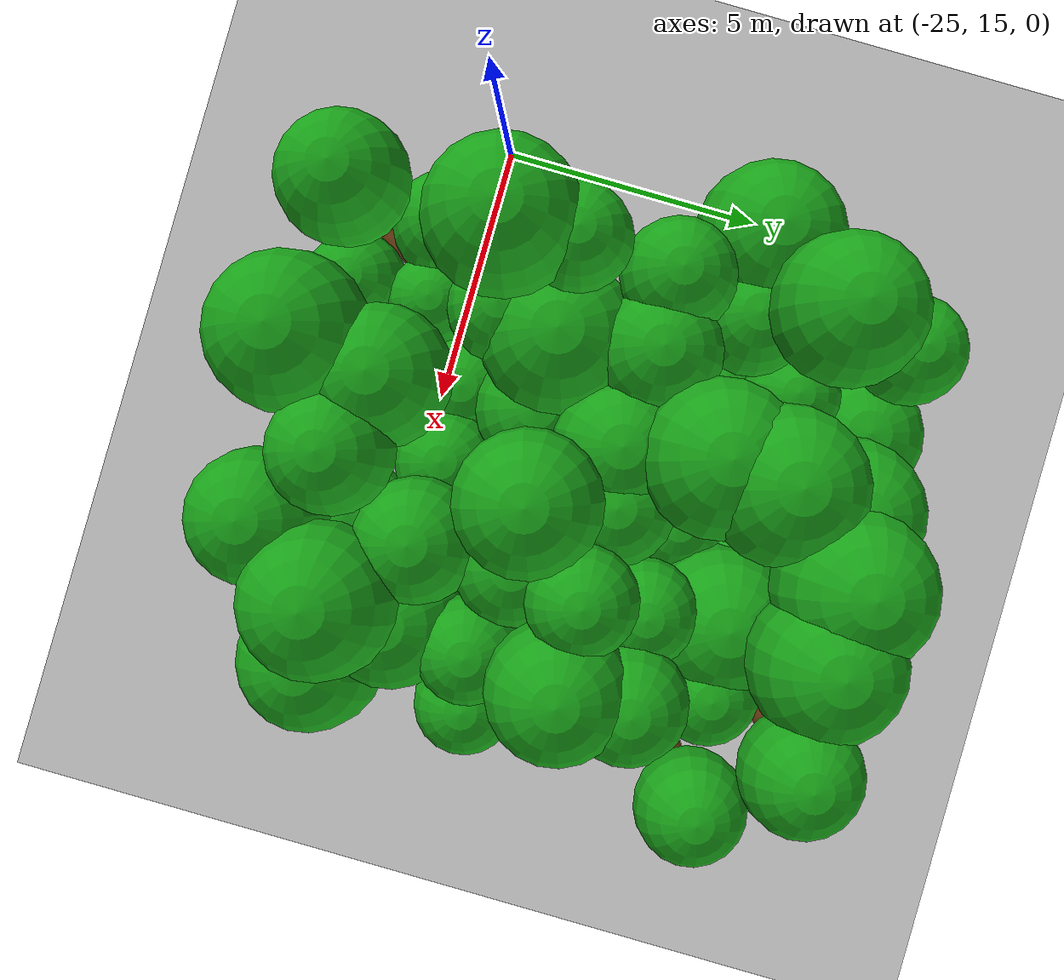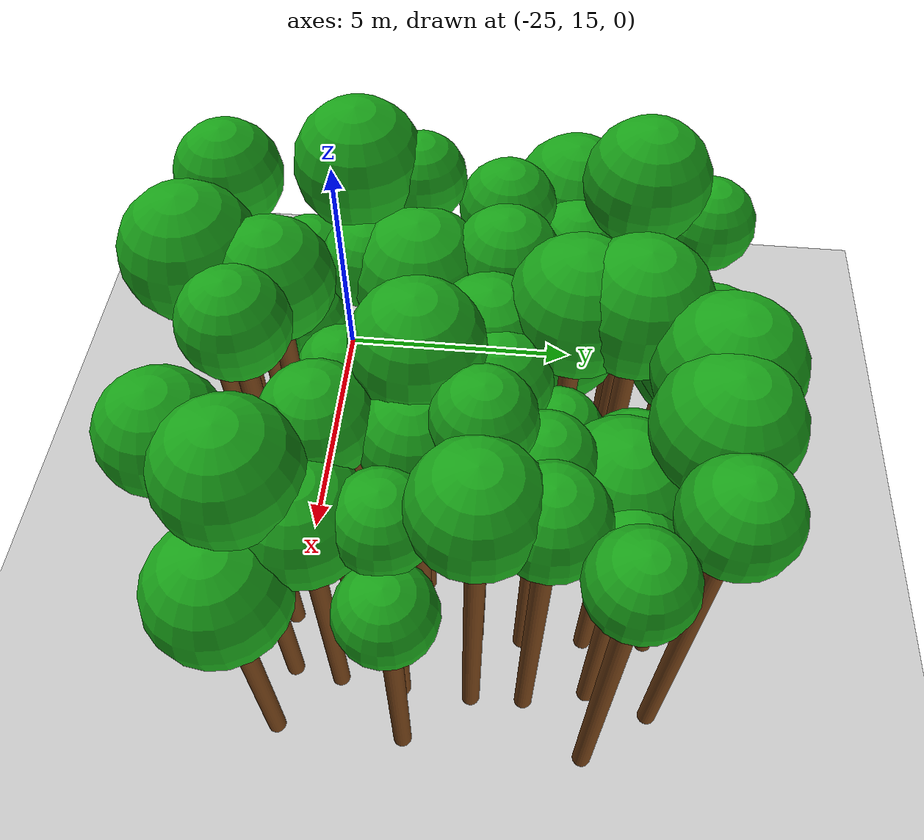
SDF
<sdf version="1.6">
 <world name="forest_world">
  <include><uri>model://sun</uri></include>
  <include><uri>model://ground_plane</uri></include>
  <model name="tree_375_trunk">
   <static>true</static>
   <pose>-23.26 19.58 2.82 0 0 0</pose>
   <link name="link">
    <collision name="collision">
     <geometry><cylinder><radius>0.16</radius><length>5.64</length></cylinder></geometry>
    </collision>
    <visual name="visual">
     <geometry><cylinder><radius>0.16</radius><length>5.64</length></cylinder></geometry>
     <material><ambient>0.35 0.20 0.05 1</ambient><diffuse>0.45 0.25 0.08 1</diffuse></material>
    </visual>
   </link>
  </model>
  <model name="tree_375_leaf">
   <static>true</static>
   <pose>-23.26 19.58 6.26 0 0 0</pose>
   <link name="link">
    <collision name="collision"><geometry><sphere><radius>1.03</radius></sphere></geometry></collision>
    <visual name="visual">
     <geometry><sphere><radius>1.03</radius></sphere></geometry>
     <material><ambient>0.05 0.45 0.05 1</ambient><diffuse>0.10 0.65 0.10 1</diffuse></material>
    </visual>
   </link>
  </model>
  <model name="tree_425_trunk">
   <static>true</static>
   <pose>-22.26 14.05 3.31 0 0 0</pose>
   <link name="link">
    <collision name="collision">
     <geometry><cylinder><radius>0.16</radius><length>6.62</length></cylinder></geometry>
    </collision>
    <visual name="visual">
     <geometry><cylinder><radius>0.16</radius><length>6.62</length></cylinder></geometry>
     <material><ambient>0.35 0.20 0.05 1</ambient><diffuse>0.45 0.25 0.08 1</diffuse></material>
    </visual>
   </link>
  </model>
  <model name="tree_425_leaf">
   <static>true</static>
   <pose>-22.26 14.05 7.14 0 0 0</pose>
   <link name="link">
    <collision name="collision"><geometry><sphere><radius>0.87</radius></sphere></geometry></collision>
    <visual name="visual">
     <geometry><sphere><radius>0.87</radius></sphere></geometry>
     <material><ambient>0.05 0.45 0.05 1</ambient><diffuse>0.10 0.65 0.10 1</diffuse></material>
    </visual>
   </link>
  </model>
  <model name="tree_426_trunk">
   <static>true</static>
   <pose>-22.38 15.13 2.36 0 0 0</pose>
   <link name="link">
    <collision name="collision">
     <geometry><cylinder><radius>0.16</radius><length>4.73</length></cylinder></geometry>
    </collision>
    <visual name="visual">
     <geometry><cylinder><radius>0.16</radius><length>4.73</length></cylinder></geometry>
     <material><ambient>0.35 0.20 0.05 1</ambient><diffuse>0.45 0.25 0.08 1</diffuse></material>
    </visual>
   </link>
  </model>
  <model name="tree_426_leaf">
   <static>true</static>
   <pose>-22.38 15.13 5.21 0 0 0</pose>
   <link name="link">
    <collision name="collision"><geometry><sphere><radius>0.80</radius></sphere></geometry></collision>
    <visual name="visual">
     <geometry><sphere><radius>0.80</radius></sphere></geometry>
     <material><ambient>0.05 0.45 0.05 1</ambient><diffuse>0.10 0.65 0.10 1</diffuse></material>
    </visual>
   </link>
  </model>
  <model name="tree_427_trunk">
   <static>true</static>
   <pose>-22.29 16.17 3.43 0 0 0</pose>
   <link name="link">
    <collision name="collision">
     <geometry><cylinder><radius>0.16</radius><length>6.86</length></cylinder></geometry>
    </collision>
    <visual name="visual">
     <geometry><cylinder><radius>0.16</radius><length>6.86</length></cylinder></geometry>
     <material><ambient>0.35 0.20 0.05 1</ambient><diffuse>0.45 0.25 0.08 1</diffuse></material>
    </visual>
   </link>
  </model>
  <model name="tree_427_leaf">
   <static>true</static>
   <pose>-22.29 16.17 7.48 0 0 0</pose>
   <link name="link">
    <collision name="collision"><geometry><sphere><radius>1.03</radius></sphere></geometry></collision>
    <visual name="visual">
     <geometry><sphere><radius>1.03</radius></sphere></geometry>
     <material><ambient>0.05 0.45 0.05 1</ambient><diffuse>0.10 0.65 0.10 1</diffuse></material>
    </visual>
   </link>
  </model>
  <model name="tree_428_trunk">
   <static>true</static>
   <pose>-22.34 17.13 3.41 0 0 0</pose>
   <link name="link">
    <collision name="collision">
     <geometry><cylinder><radius>0.16</radius><length>6.82</length></cylinder></geometry>
    </collision>
    <visual name="visual">
     <geometry><cylinder><radius>0.16</radius><length>6.82</length></cylinder></geometry>
     <material><ambient>0.35 0.20 0.05 1</ambient><diffuse>0.45 0.25 0.08 1</diffuse></material>
    </visual>
   </link>
  </model>
  <model name="tree_428_leaf">
   <static>true</static>
   <pose>-22.34 17.13 7.25 0 0 0</pose>
   <link name="link">
    <collision name="collision"><geometry><sphere><radius>0.71</radius></sphere></geometry></collision>
    <visual name="visual">
     <geometry><sphere><radius>0.71</radius></sphere></geometry>
     <material><ambient>0.05 0.45 0.05 1</ambient><diffuse>0.10 0.65 0.10 1</diffuse></material>
    </visual>
   </link>
  </model>
  <model name="tree_429_trunk">
   <static>true</static>
   <pose>-22.31 18.50 3.15 0 0 0</pose>
   <link name="link">
    <collision name="collision">
     <geometry><cylinder><radius>0.16</radius><length>6.30</length></cylinder></geometry>
    </collision>
    <visual name="visual">
     <geometry><cylinder><radius>0.16</radius><length>6.30</length></cylinder></geometry>
     <material><ambient>0.35 0.20 0.05 1</ambient><diffuse>0.45 0.25 0.08 1</diffuse></material>
    </visual>
   </link>
  </model>
  <model name="tree_429_leaf">
   <static>true</static>
   <pose>-22.31 18.50 6.77 0 0 0</pose>
   <link name="link">
    <collision name="collision"><geometry><sphere><radius>0.78</radius></sphere></geometry></collision>
    <visual name="visual">
     <geometry><sphere><radius>0.78</radius></sphere></geometry>
     <material><ambient>0.05 0.45 0.05 1</ambient><diffuse>0.10 0.65 0.10 1</diffuse></material>
    </visual>
   </link>
  </model>
  <model name="tree_430_trunk">
   <static>true</static>
   <pose>-22.13 19.65 2.85 0 0 0</pose>
   <link name="link">
    <collision name="collision">
     <geometry><cylinder><radius>0.16</radius><length>5.71</length></cylinder></geometry>
    </collision>
    <visual name="visual">
     <geometry><cylinder><radius>0.16</radius><length>5.71</length></cylinder></geometry>
     <material><ambient>0.35 0.20 0.05 1</ambient><diffuse>0.45 0.25 0.08 1</diffuse></material>
    </visual>
   </link>
  </model>
  <model name="tree_430_leaf">
   <static>true</static>
   <pose>-22.13 19.65 6.18 0 0 0</pose>
   <link name="link">
    <collision name="collision"><geometry><sphere><radius>0.79</radius></sphere></geometry></collision>
    <visual name="visual">
     <geometry><sphere><radius>0.79</radius></sphere></geometry>
     <material><ambient>0.05 0.45 0.05 1</ambient><diffuse>0.10 0.65 0.10 1</diffuse></material>
    </visual>
   </link>
  </model>
  <model name="tree_431_trunk">
   <static>true</static>
   <pose>-22.37 20.61 3.41 0 0 0</pose>
   <link name="link">
    <collision name="collision">
     <geometry><cylinder><radius>0.16</radius><length>6.81</length></cylinder></geometry>
    </collision>
    <visual name="visual">
     <geometry><cylinder><radius>0.16</radius><length>6.81</length></cylinder></geometry>
     <material><ambient>0.35 0.20 0.05 1</ambient><diffuse>0.45 0.25 0.08 1</diffuse></material>
    </visual>
   </link>
  </model>
  <model name="tree_431_leaf">
   <static>true</static>
   <pose>-22.37 20.61 7.41 0 0 0</pose>
   <link name="link">
    <collision name="collision"><geometry><sphere><radius>0.99</radius></sphere></geometry></collision>
    <visual name="visual">
     <geometry><sphere><radius>0.99</radius></sphere></geometry>
     <material><ambient>0.05 0.45 0.05 1</ambient><diffuse>0.10 0.65 0.10 1</diffuse></material>
    </visual>
   </link>
  </model>
  <model name="tree_432_trunk">
   <static>true</static>
   <pose>-22.21 21.65 3.17 0 0 0</pose>
   <link name="link">
    <collision name="collision">
     <geometry><cylinder><radius>0.16</radius><length>6.34</length></cylinder></geometry>
    </collision>
    <visual name="visual">
     <geometry><cylinder><radius>0.16</radius><length>6.34</length></cylinder></geometry>
     <material><ambient>0.35 0.20 0.05 1</ambient><diffuse>0.45 0.25 0.08 1</diffuse></material>
    </visual>
   </link>
  </model>
  <model name="tree_432_leaf">
   <static>true</static>
   <pose>-22.21 21.65 6.78 0 0 0</pose>
   <link name="link">
    <collision name="collision"><geometry><sphere><radius>0.74</radius></sphere></geometry></collision>
    <visual name="visual">
     <geometry><sphere><radius>0.74</radius></sphere></geometry>
     <material><ambient>0.05 0.45 0.05 1</ambient><diffuse>0.10 0.65 0.10 1</diffuse></material>
    </visual>
   </link>
  </model>
  <model name="tree_480_trunk">
   <static>true</static>
   <pose>-21.26 14.01 2.22 0 0 0</pose>
   <link name="link">
    <collision name="collision">
     <geometry><cylinder><radius>0.16</radius><length>4.45</length></cylinder></geometry>
    </collision>
    <visual name="visual">
     <geometry><cylinder><radius>0.16</radius><length>4.45</length></cylinder></geometry>
     <material><ambient>0.35 0.20 0.05 1</ambient><diffuse>0.45 0.25 0.08 1</diffuse></material>
    </visual>
   </link>
  </model>
  <model name="tree_480_leaf">
   <static>true</static>
   <pose>-21.26 14.01 4.90 0 0 0</pose>
   <link name="link">
    <collision name="collision"><geometry><sphere><radius>0.75</radius></sphere></geometry></collision>
    <visual name="visual">
     <geometry><sphere><radius>0.75</radius></sphere></geometry>
     <material><ambient>0.05 0.45 0.05 1</ambient><diffuse>0.10 0.65 0.10 1</diffuse></material>
    </visual>
   </link>
  </model>
  <model name="tree_481_trunk">
   <static>true</static>
   <pose>-21.28 15.23 2.29 0 0 0</pose>
   <link name="link">
    <collision name="collision">
     <geometry><cylinder><radius>0.16</radius><length>4.59</length></cylinder></geometry>
    </collision>
    <visual name="visual">
     <geometry><cylinder><radius>0.16</radius><length>4.59</length></cylinder></geometry>
     <material><ambient>0.35 0.20 0.05 1</ambient><diffuse>0.45 0.25 0.08 1</diffuse></material>
    </visual>
   </link>
  </model>
  <model name="tree_481_leaf">
   <static>true</static>
   <pose>-21.28 15.23 5.01 0 0 0</pose>
   <link name="link">
    <collision name="collision"><geometry><sphere><radius>0.70</radius></sphere></geometry></collision>
    <visual name="visual">
     <geometry><sphere><radius>0.70</radius></sphere></geometry>
     <material><ambient>0.05 0.45 0.05 1</ambient><diffuse>0.10 0.65 0.10 1</diffuse></material>
    </visual>
   </link>
  </model>
  <model name="tree_482_trunk">
   <static>true</static>
   <pose>-21.32 16.36 2.96 0 0 0</pose>
   <link name="link">
    <collision name="collision">
     <geometry><cylinder><radius>0.16</radius><length>5.92</length></cylinder></geometry>
    </collision>
    <visual name="visual">
     <geometry><cylinder><radius>0.16</radius><length>5.92</length></cylinder></geometry>
     <material><ambient>0.35 0.20 0.05 1</ambient><diffuse>0.45 0.25 0.08 1</diffuse></material>
    </visual>
   </link>
  </model>
  <model name="tree_482_leaf">
   <static>true</static>
   <pose>-21.32 16.36 6.37 0 0 0</pose>
   <link name="link">
    <collision name="collision"><geometry><sphere><radius>0.75</radius></sphere></geometry></collision>
    <visual name="visual">
     <geometry><sphere><radius>0.75</radius></sphere></geometry>
     <material><ambient>0.05 0.45 0.05 1</ambient><diffuse>0.10 0.65 0.10 1</diffuse></material>
    </visual>
   </link>
  </model>
  <model name="tree_483_trunk">
   <static>true</static>
   <pose>-21.17 17.20 2.81 0 0 0</pose>
   <link name="link">
    <collision name="collision">
     <geometry><cylinder><radius>0.16</radius><length>5.62</length></cylinder></geometry>
    </collision>
    <visual name="visual">
     <geometry><cylinder><radius>0.16</radius><length>5.62</length></cylinder></geometry>
     <material><ambient>0.35 0.20 0.05 1</ambient><diffuse>0.45 0.25 0.08 1</diffuse></material>
    </visual>
   </link>
  </model>
  <model name="tree_483_leaf">
   <static>true</static>
   <pose>-21.17 17.20 6.28 0 0 0</pose>
   <link name="link">
    <collision name="collision"><geometry><sphere><radius>1.10</radius></sphere></geometry></collision>
    <visual name="visual">
     <geometry><sphere><radius>1.10</radius></sphere></geometry>
     <material><ambient>0.05 0.45 0.05 1</ambient><diffuse>0.10 0.65 0.10 1</diffuse></material>
    </visual>
   </link>
  </model>
  <model name="tree_484_trunk">
   <static>true</static>
   <pose>-21.31 18.54 3.04 0 0 0</pose>
   <link name="link">
    <collision name="collision">
     <geometry><cylinder><radius>0.16</radius><length>6.09</length></cylinder></geometry>
    </collision>
    <visual name="visual">
     <geometry><cylinder><radius>0.16</radius><length>6.09</length></cylinder></geometry>
     <material><ambient>0.35 0.20 0.05 1</ambient><diffuse>0.45 0.25 0.08 1</diffuse></material>
    </visual>
   </link>
  </model>
  <model name="tree_484_leaf">
   <static>true</static>
   <pose>-21.31 18.54 6.61 0 0 0</pose>
   <link name="link">
    <collision name="collision"><geometry><sphere><radius>0.86</radius></sphere></geometry></collision>
    <visual name="visual">
     <geometry><sphere><radius>0.86</radius></sphere></geometry>
     <material><ambient>0.05 0.45 0.05 1</ambient><diffuse>0.10 0.65 0.10 1</diffuse></material>
    </visual>
   </link>
  </model>
  <model name="tree_485_trunk">
   <static>true</static>
   <pose>-21.32 19.59 2.06 0 0 0</pose>
   <link name="link">
    <collision name="collision">
     <geometry><cylinder><radius>0.16</radius><length>4.13</length></cylinder></geometry>
    </collision>
    <visual name="visual">
     <geometry><cylinder><radius>0.16</radius><length>4.13</length></cylinder></geometry>
     <material><ambient>0.35 0.20 0.05 1</ambient><diffuse>0.45 0.25 0.08 1</diffuse></material>
    </visual>
   </link>
  </model>
  <model name="tree_485_leaf">
   <static>true</static>
   <pose>-21.32 19.59 4.70 0 0 0</pose>
   <link name="link">
    <collision name="collision"><geometry><sphere><radius>0.95</radius></sphere></geometry></collision>
    <visual name="visual">
     <geometry><sphere><radius>0.95</radius></sphere></geometry>
     <material><ambient>0.05 0.45 0.05 1</ambient><diffuse>0.10 0.65 0.10 1</diffuse></material>
    </visual>
   </link>
  </model>
  <model name="tree_486_trunk">
   <static>true</static>
   <pose>-21.34 20.57 2.50 0 0 0</pose>
   <link name="link">
    <collision name="collision">
     <geometry><cylinder><radius>0.16</radius><length>5.00</length></cylinder></geometry>
    </collision>
    <visual name="visual">
     <geometry><cylinder><radius>0.16</radius><length>5.00</length></cylinder></geometry>
     <material><ambient>0.35 0.20 0.05 1</ambient><diffuse>0.45 0.25 0.08 1</diffuse></material>
    </visual>
   </link>
  </model>
  <model name="tree_486_leaf">
   <static>true</static>
   <pose>-21.34 20.57 5.44 0 0 0</pose>
   <link name="link">
    <collision name="collision"><geometry><sphere><radius>0.73</radius></sphere></geometry></collision>
    <visual name="visual">
     <geometry><sphere><radius>0.73</radius></sphere></geometry>
     <material><ambient>0.05 0.45 0.05 1</ambient><diffuse>0.10 0.65 0.10 1</diffuse></material>
    </visual>
   </link>
  </model>
  <model name="tree_487_trunk">
   <static>true</static>
   <pose>-21.11 21.74 2.09 0 0 0</pose>
   <link name="link">
    <collision name="collision">
     <geometry><cylinder><radius>0.16</radius><length>4.19</length></cylinder></geometry>
    </collision>
    <visual name="visual">
     <geometry><cylinder><radius>0.16</radius><length>4.19</length></cylinder></geometry>
     <material><ambient>0.35 0.20 0.05 1</ambient><diffuse>0.45 0.25 0.08 1</diffuse></material>
    </visual>
   </link>
  </model>
  <model name="tree_487_leaf">
   <static>true</static>
   <pose>-21.11 21.74 4.81 0 0 0</pose>
   <link name="link">
    <collision name="collision"><geometry><sphere><radius>1.04</radius></sphere></geometry></collision>
    <visual name="visual">
     <geometry><sphere><radius>1.04</radius></sphere></geometry>
     <material><ambient>0.05 0.45 0.05 1</ambient><diffuse>0.10 0.65 0.10 1</diffuse></material>
    </visual>
   </link>
  </model>
  <model name="tree_535_trunk">
   <static>true</static>
   <pose>-20.19 14.02 3.42 0 0 0</pose>
   <link name="link">
    <collision name="collision">
     <geometry><cylinder><radius>0.16</radius><length>6.84</length></cylinder></geometry>
    </collision>
    <visual name="visual">
     <geometry><cylinder><radius>0.16</radius><length>6.84</length></cylinder></geometry>
     <material><ambient>0.35 0.20 0.05 1</ambient><diffuse>0.45 0.25 0.08 1</diffuse></material>
    </visual>
   </link>
  </model>
  <model name="tree_535_leaf">
   <static>true</static>
   <pose>-20.19 14.02 7.46 0 0 0</pose>
   <link name="link">
    <collision name="collision"><geometry><sphere><radius>1.03</radius></sphere></geometry></collision>
    <visual name="visual">
     <geometry><sphere><radius>1.03</radius></sphere></geometry>
     <material><ambient>0.05 0.45 0.05 1</ambient><diffuse>0.10 0.65 0.10 1</diffuse></material>
    </visual>
   </link>
  </model>
  <model name="tree_536_trunk">
   <static>true</static>
   <pose>-19.98 15.21 3.34 0 0 0</pose>
   <link name="link">
    <collision name="collision">
     <geometry><cylinder><radius>0.16</radius><length>6.67</length></cylinder></geometry>
    </collision>
    <visual name="visual">
     <geometry><cylinder><radius>0.16</radius><length>6.67</length></cylinder></geometry>
     <material><ambient>0.35 0.20 0.05 1</ambient><diffuse>0.45 0.25 0.08 1</diffuse></material>
    </visual>
   </link>
  </model>
  <model name="tree_536_leaf">
   <static>true</static>
   <pose>-19.98 15.21 7.23 0 0 0</pose>
   <link name="link">
    <collision name="collision"><geometry><sphere><radius>0.93</radius></sphere></geometry></collision>
    <visual name="visual">
     <geometry><sphere><radius>0.93</radius></sphere></geometry>
     <material><ambient>0.05 0.45 0.05 1</ambient><diffuse>0.10 0.65 0.10 1</diffuse></material>
    </visual>
   </link>
  </model>
  <model name="tree_537_trunk">
   <static>true</static>
   <pose>-20.18 16.02 2.23 0 0 0</pose>
   <link name="link">
    <collision name="collision">
     <geometry><cylinder><radius>0.16</radius><length>4.46</length></cylinder></geometry>
    </collision>
    <visual name="visual">
     <geometry><cylinder><radius>0.16</radius><length>4.46</length></cylinder></geometry>
     <material><ambient>0.35 0.20 0.05 1</ambient><diffuse>0.45 0.25 0.08 1</diffuse></material>
    </visual>
   </link>
  </model>
  <model name="tree_537_leaf">
   <static>true</static>
   <pose>-20.18 16.02 4.94 0 0 0</pose>
   <link name="link">
    <collision name="collision"><geometry><sphere><radius>0.79</radius></sphere></geometry></collision>
    <visual name="visual">
     <geometry><sphere><radius>0.79</radius></sphere></geometry>
     <material><ambient>0.05 0.45 0.05 1</ambient><diffuse>0.10 0.65 0.10 1</diffuse></material>
    </visual>
   </link>
  </model>
  <model name="tree_538_trunk">
   <static>true</static>
   <pose>-20.15 17.18 2.53 0 0 0</pose>
   <link name="link">
    <collision name="collision">
     <geometry><cylinder><radius>0.16</radius><length>5.06</length></cylinder></geometry>
    </collision>
    <visual name="visual">
     <geometry><cylinder><radius>0.16</radius><length>5.06</length></cylinder></geometry>
     <material><ambient>0.35 0.20 0.05 1</ambient><diffuse>0.45 0.25 0.08 1</diffuse></material>
    </visual>
   </link>
  </model>
  <model name="tree_538_leaf">
   <static>true</static>
   <pose>-20.15 17.18 5.60 0 0 0</pose>
   <link name="link">
    <collision name="collision"><geometry><sphere><radius>0.91</radius></sphere></geometry></collision>
    <visual name="visual">
     <geometry><sphere><radius>0.91</radius></sphere></geometry>
     <material><ambient>0.05 0.45 0.05 1</ambient><diffuse>0.10 0.65 0.10 1</diffuse></material>
    </visual>
   </link>
  </model>
  <model name="tree_539_trunk">
   <static>true</static>
   <pose>-19.96 18.40 2.92 0 0 0</pose>
   <link name="link">
    <collision name="collision">
     <geometry><cylinder><radius>0.16</radius><length>5.85</length></cylinder></geometry>
    </collision>
    <visual name="visual">
     <geometry><cylinder><radius>0.16</radius><length>5.85</length></cylinder></geometry>
     <material><ambient>0.35 0.20 0.05 1</ambient><diffuse>0.45 0.25 0.08 1</diffuse></material>
    </visual>
   </link>
  </model>
  <model name="tree_539_leaf">
   <static>true</static>
   <pose>-19.96 18.40 6.40 0 0 0</pose>
   <link name="link">
    <collision name="collision"><geometry><sphere><radius>0.93</radius></sphere></geometry></collision>
    <visual name="visual">
     <geometry><sphere><radius>0.93</radius></sphere></geometry>
     <material><ambient>0.05 0.45 0.05 1</ambient><diffuse>0.10 0.65 0.10 1</diffuse></material>
    </visual>
   </link>
  </model>
  <model name="tree_540_trunk">
   <static>true</static>
   <pose>-20.17 19.67 3.14 0 0 0</pose>
   <link name="link">
    <collision name="collision">
     <geometry><cylinder><radius>0.16</radius><length>6.27</length></cylinder></geometry>
    </collision>
    <visual name="visual">
     <geometry><cylinder><radius>0.16</radius><length>6.27</length></cylinder></geometry>
     <material><ambient>0.35 0.20 0.05 1</ambient><diffuse>0.45 0.25 0.08 1</diffuse></material>
    </visual>
   </link>
  </model>
  <model name="tree_540_leaf">
   <static>true</static>
   <pose>-20.17 19.67 6.91 0 0 0</pose>
   <link name="link">
    <collision name="collision"><geometry><sphere><radius>1.07</radius></sphere></geometry></collision>
    <visual name="visual">
     <geometry><sphere><radius>1.07</radius></sphere></geometry>
     <material><ambient>0.05 0.45 0.05 1</ambient><diffuse>0.10 0.65 0.10 1</diffuse></material>
    </visual>
   </link>
  </model>
  <model name="tree_541_trunk">
   <static>true</static>
   <pose>-20.06 20.53 3.23 0 0 0</pose>
   <link name="link">
    <collision name="collision">
     <geometry><cylinder><radius>0.16</radius><length>6.46</length></cylinder></geometry>
    </collision>
    <visual name="visual">
     <geometry><cylinder><radius>0.16</radius><length>6.46</length></cylinder></geometry>
     <material><ambient>0.35 0.20 0.05 1</ambient><diffuse>0.45 0.25 0.08 1</diffuse></material>
    </visual>
   </link>
  </model>
  <model name="tree_541_leaf">
   <static>true</static>
   <pose>-20.06 20.53 7.10 0 0 0</pose>
   <link name="link">
    <collision name="collision"><geometry><sphere><radius>1.06</radius></sphere></geometry></collision>
    <visual name="visual">
     <geometry><sphere><radius>1.06</radius></sphere></geometry>
     <material><ambient>0.05 0.45 0.05 1</ambient><diffuse>0.10 0.65 0.10 1</diffuse></material>
    </visual>
   </link>
  </model>
  <model name="tree_542_trunk">
   <static>true</static>
   <pose>-19.96 21.58 2.86 0 0 0</pose>
   <link name="link">
    <collision name="collision">
     <geometry><cylinder><radius>0.16</radius><length>5.72</length></cylinder></geometry>
    </collision>
    <visual name="visual">
     <geometry><cylinder><radius>0.16</radius><length>5.72</length></cylinder></geometry>
     <material><ambient>0.35 0.20 0.05 1</ambient><diffuse>0.45 0.25 0.08 1</diffuse></material>
    </visual>
   </link>
  </model>
  <model name="tree_542_leaf">
   <static>true</static>
   <pose>-19.96 21.58 6.34 0 0 0</pose>
   <link name="link">
    <collision name="collision"><geometry><sphere><radius>1.03</radius></sphere></geometry></collision>
    <visual name="visual">
     <geometry><sphere><radius>1.03</radius></sphere></geometry>
     <material><ambient>0.05 0.45 0.05 1</ambient><diffuse>0.10 0.65 0.10 1</diffuse></material>
    </visual>
   </link>
  </model>
  <model name="tree_591_trunk">
   <static>true</static>
   <pose>-18.92 14.93 3.48 0 0 0</pose>
   <link name="link">
    <collision name="collision">
     <geometry><cylinder><radius>0.16</radius><length>6.97</length></cylinder></geometry>
    </collision>
    <visual name="visual">
     <geometry><cylinder><radius>0.16</radius><length>6.97</length></cylinder></geometry>
     <material><ambient>0.35 0.20 0.05 1</ambient><diffuse>0.45 0.25 0.08 1</diffuse></material>
    </visual>
   </link>
  </model>
  <model name="tree_591_leaf">
   <static>true</static>
   <pose>-18.92 14.93 7.45 0 0 0</pose>
   <link name="link">
    <collision name="collision"><geometry><sphere><radius>0.81</radius></sphere></geometry></collision>
    <visual name="visual">
     <geometry><sphere><radius>0.81</radius></sphere></geometry>
     <material><ambient>0.05 0.45 0.05 1</ambient><diffuse>0.10 0.65 0.10 1</diffuse></material>
    </visual>
   </link>
  </model>
  <model name="tree_592_trunk">
   <static>true</static>
   <pose>-19.07 16.09 2.43 0 0 0</pose>
   <link name="link">
    <collision name="collision">
     <geometry><cylinder><radius>0.16</radius><length>4.85</length></cylinder></geometry>
    </collision>
    <visual name="visual">
     <geometry><cylinder><radius>0.16</radius><length>4.85</length></cylinder></geometry>
     <material><ambient>0.35 0.20 0.05 1</ambient><diffuse>0.45 0.25 0.08 1</diffuse></material>
    </visual>
   </link>
  </model>
  <model name="tree_592_leaf">
   <static>true</static>
   <pose>-19.07 16.09 5.31 0 0 0</pose>
   <link name="link">
    <collision name="collision"><geometry><sphere><radius>0.76</radius></sphere></geometry></collision>
    <visual name="visual">
     <geometry><sphere><radius>0.76</radius></sphere></geometry>
     <material><ambient>0.05 0.45 0.05 1</ambient><diffuse>0.10 0.65 0.10 1</diffuse></material>
    </visual>
   </link>
  </model>
  <model name="tree_593_trunk">
   <static>true</static>
   <pose>-18.94 17.44 3.31 0 0 0</pose>
   <link name="link">
    <collision name="collision">
     <geometry><cylinder><radius>0.16</radius><length>6.62</length></cylinder></geometry>
    </collision>
    <visual name="visual">
     <geometry><cylinder><radius>0.16</radius><length>6.62</length></cylinder></geometry>
     <material><ambient>0.35 0.20 0.05 1</ambient><diffuse>0.45 0.25 0.08 1</diffuse></material>
    </visual>
   </link>
  </model>
  <model name="tree_593_leaf">
   <static>true</static>
   <pose>-18.94 17.44 7.21 0 0 0</pose>
   <link name="link">
    <collision name="collision"><geometry><sphere><radius>0.98</radius></sphere></geometry></collision>
    <visual name="visual">
     <geometry><sphere><radius>0.98</radius></sphere></geometry>
     <material><ambient>0.05 0.45 0.05 1</ambient><diffuse>0.10 0.65 0.10 1</diffuse></material>
    </visual>
   </link>
  </model>
  <model name="tree_594_trunk">
   <static>true</static>
   <pose>-19.18 18.55 2.90 0 0 0</pose>
   <link name="link">
    <collision name="collision">
     <geometry><cylinder><radius>0.16</radius><length>5.80</length></cylinder></geometry>
    </collision>
    <visual name="visual">
     <geometry><cylinder><radius>0.16</radius><length>5.80</length></cylinder></geometry>
     <material><ambient>0.35 0.20 0.05 1</ambient><diffuse>0.45 0.25 0.08 1</diffuse></material>
    </visual>
   </link>
  </model>
  <model name="tree_594_leaf">
   <static>true</static>
   <pose>-19.18 18.55 6.30 0 0 0</pose>
   <link name="link">
    <collision name="collision"><geometry><sphere><radius>0.84</radius></sphere></geometry></collision>
    <visual name="visual">
     <geometry><sphere><radius>0.84</radius></sphere></geometry>
     <material><ambient>0.05 0.45 0.05 1</ambient><diffuse>0.10 0.65 0.10 1</diffuse></material>
    </visual>
   </link>
  </model>
  <model name="tree_595_trunk">
   <static>true</static>
   <pose>-19.12 19.53 2.37 0 0 0</pose>
   <link name="link">
    <collision name="collision">
     <geometry><cylinder><radius>0.16</radius><length>4.74</length></cylinder></geometry>
    </collision>
    <visual name="visual">
     <geometry><cylinder><radius>0.16</radius><length>4.74</length></cylinder></geometry>
     <material><ambient>0.35 0.20 0.05 1</ambient><diffuse>0.45 0.25 0.08 1</diffuse></material>
    </visual>
   </link>
  </model>
  <model name="tree_595_leaf">
   <static>true</static>
   <pose>-19.12 19.53 5.17 0 0 0</pose>
   <link name="link">
    <collision name="collision"><geometry><sphere><radius>0.72</radius></sphere></geometry></collision>
    <visual name="visual">
     <geometry><sphere><radius>0.72</radius></sphere></geometry>
     <material><ambient>0.05 0.45 0.05 1</ambient><diffuse>0.10 0.65 0.10 1</diffuse></material>
    </visual>
   </link>
  </model>
  <model name="tree_596_trunk">
   <static>true</static>
   <pose>-18.86 20.74 2.14 0 0 0</pose>
   <link name="link">
    <collision name="collision">
     <geometry><cylinder><radius>0.16</radius><length>4.29</length></cylinder></geometry>
    </collision>
    <visual name="visual">
     <geometry><cylinder><radius>0.16</radius><length>4.29</length></cylinder></geometry>
     <material><ambient>0.35 0.20 0.05 1</ambient><diffuse>0.45 0.25 0.08 1</diffuse></material>
    </visual>
   </link>
  </model>
  <model name="tree_596_leaf">
   <static>true</static>
   <pose>-18.86 20.74 4.82 0 0 0</pose>
   <link name="link">
    <collision name="collision"><geometry><sphere><radius>0.89</radius></sphere></geometry></collision>
    <visual name="visual">
     <geometry><sphere><radius>0.89</radius></sphere></geometry>
     <material><ambient>0.05 0.45 0.05 1</ambient><diffuse>0.10 0.65 0.10 1</diffuse></material>
    </visual>
   </link>
  </model>
  <model name="tree_597_trunk">
   <static>true</static>
   <pose>-19.03 21.70 3.23 0 0 0</pose>
   <link name="link">
    <collision name="collision">
     <geometry><cylinder><radius>0.16</radius><length>6.47</length></cylinder></geometry>
    </collision>
    <visual name="visual">
     <geometry><cylinder><radius>0.16</radius><length>6.47</length></cylinder></geometry>
     <material><ambient>0.35 0.20 0.05 1</ambient><diffuse>0.45 0.25 0.08 1</diffuse></material>
    </visual>
   </link>
  </model>
  <model name="tree_597_leaf">
   <static>true</static>
   <pose>-19.03 21.70 7.11 0 0 0</pose>
   <link name="link">
    <collision name="collision"><geometry><sphere><radius>1.07</radius></sphere></geometry></collision>
    <visual name="visual">
     <geometry><sphere><radius>1.07</radius></sphere></geometry>
     <material><ambient>0.05 0.45 0.05 1</ambient><diffuse>0.10 0.65 0.10 1</diffuse></material>
    </visual>
   </link>
  </model>
  <model name="tree_645_trunk">
   <static>true</static>
   <pose>-17.73 13.99 2.92 0 0 0</pose>
   <link name="link">
    <collision name="collision">
     <geometry><cylinder><radius>0.16</radius><length>5.84</length></cylinder></geometry>
    </collision>
    <visual name="visual">
     <geometry><cylinder><radius>0.16</radius><length>5.84</length></cylinder></geometry>
     <material><ambient>0.35 0.20 0.05 1</ambient><diffuse>0.45 0.25 0.08 1</diffuse></material>
    </visual>
   </link>
  </model>
  <model name="tree_645_leaf">
   <static>true</static>
   <pose>-17.73 13.99 6.41 0 0 0</pose>
   <link name="link">
    <collision name="collision"><geometry><sphere><radius>0.95</radius></sphere></geometry></collision>
    <visual name="visual">
     <geometry><sphere><radius>0.95</radius></sphere></geometry>
     <material><ambient>0.05 0.45 0.05 1</ambient><diffuse>0.10 0.65 0.10 1</diffuse></material>
    </visual>
   </link>
  </model>
  <model name="tree_646_trunk">
   <static>true</static>
   <pose>-18.00 14.98 2.25 0 0 0</pose>
   <link name="link">
    <collision name="collision">
     <geometry><cylinder><radius>0.16</radius><length>4.50</length></cylinder></geometry>
    </collision>
    <visual name="visual">
     <geometry><cylinder><radius>0.16</radius><length>4.50</length></cylinder></geometry>
     <material><ambient>0.35 0.20 0.05 1</ambient><diffuse>0.45 0.25 0.08 1</diffuse></material>
    </visual>
   </link>
  </model>
  <model name="tree_646_leaf">
   <static>true</static>
   <pose>-18.00 14.98 4.98 0 0 0</pose>
   <link name="link">
    <collision name="collision"><geometry><sphere><radius>0.79</radius></sphere></geometry></collision>
    <visual name="visual">
     <geometry><sphere><radius>0.79</radius></sphere></geometry>
     <material><ambient>0.05 0.45 0.05 1</ambient><diffuse>0.10 0.65 0.10 1</diffuse></material>
    </visual>
   </link>
  </model>
  <model name="tree_647_trunk">
   <static>true</static>
   <pose>-18.03 16.14 3.02 0 0 0</pose>
   <link name="link">
    <collision name="collision">
     <geometry><cylinder><radius>0.16</radius><length>6.04</length></cylinder></geometry>
    </collision>
    <visual name="visual">
     <geometry><cylinder><radius>0.16</radius><length>6.04</length></cylinder></geometry>
     <material><ambient>0.35 0.20 0.05 1</ambient><diffuse>0.45 0.25 0.08 1</diffuse></material>
    </visual>
   </link>
  </model>
  <model name="tree_647_leaf">
   <static>true</static>
   <pose>-18.03 16.14 6.56 0 0 0</pose>
   <link name="link">
    <collision name="collision"><geometry><sphere><radius>0.86</radius></sphere></geometry></collision>
    <visual name="visual">
     <geometry><sphere><radius>0.86</radius></sphere></geometry>
     <material><ambient>0.05 0.45 0.05 1</ambient><diffuse>0.10 0.65 0.10 1</diffuse></material>
    </visual>
   </link>
  </model>
  <model name="tree_648_trunk">
   <static>true</static>
   <pose>-18.06 17.47 2.91 0 0 0</pose>
   <link name="link">
    <collision name="collision">
     <geometry><cylinder><radius>0.16</radius><length>5.81</length></cylinder></geometry>
    </collision>
    <visual name="visual">
     <geometry><cylinder><radius>0.16</radius><length>5.81</length></cylinder></geometry>
     <material><ambient>0.35 0.20 0.05 1</ambient><diffuse>0.45 0.25 0.08 1</diffuse></material>
    </visual>
   </link>
  </model>
  <model name="tree_648_leaf">
   <static>true</static>
   <pose>-18.06 17.47 6.32 0 0 0</pose>
   <link name="link">
    <collision name="collision"><geometry><sphere><radius>0.86</radius></sphere></geometry></collision>
    <visual name="visual">
     <geometry><sphere><radius>0.86</radius></sphere></geometry>
     <material><ambient>0.05 0.45 0.05 1</ambient><diffuse>0.10 0.65 0.10 1</diffuse></material>
    </visual>
   </link>
  </model>
  <model name="tree_649_trunk">
   <static>true</static>
   <pose>-17.92 18.44 3.29 0 0 0</pose>
   <link name="link">
    <collision name="collision">
     <geometry><cylinder><radius>0.16</radius><length>6.57</length></cylinder></geometry>
    </collision>
    <visual name="visual">
     <geometry><cylinder><radius>0.16</radius><length>6.57</length></cylinder></geometry>
     <material><ambient>0.35 0.20 0.05 1</ambient><diffuse>0.45 0.25 0.08 1</diffuse></material>
    </visual>
   </link>
  </model>
  <model name="tree_649_leaf">
   <static>true</static>
   <pose>-17.92 18.44 7.02 0 0 0</pose>
   <link name="link">
    <collision name="collision"><geometry><sphere><radius>0.75</radius></sphere></geometry></collision>
    <visual name="visual">
     <geometry><sphere><radius>0.75</radius></sphere></geometry>
     <material><ambient>0.05 0.45 0.05 1</ambient><diffuse>0.10 0.65 0.10 1</diffuse></material>
    </visual>
   </link>
  </model>
  <model name="tree_650_trunk">
   <static>true</static>
   <pose>-17.89 19.33 2.85 0 0 0</pose>
   <link name="link">
    <collision name="collision">
     <geometry><cylinder><radius>0.16</radius><length>5.70</length></cylinder></geometry>
    </collision>
    <visual name="visual">
     <geometry><cylinder><radius>0.16</radius><length>5.70</length></cylinder></geometry>
     <material><ambient>0.35 0.20 0.05 1</ambient><diffuse>0.45 0.25 0.08 1</diffuse></material>
    </visual>
   </link>
  </model>
  <model name="tree_650_leaf">
   <static>true</static>
   <pose>-17.89 19.33 6.15 0 0 0</pose>
   <link name="link">
    <collision name="collision"><geometry><sphere><radius>0.75</radius></sphere></geometry></collision>
    <visual name="visual">
     <geometry><sphere><radius>0.75</radius></sphere></geometry>
     <material><ambient>0.05 0.45 0.05 1</ambient><diffuse>0.10 0.65 0.10 1</diffuse></material>
    </visual>
   </link>
  </model>
  <model name="tree_651_trunk">
   <static>true</static>
   <pose>-17.98 20.48 2.42 0 0 0</pose>
   <link name="link">
    <collision name="collision">
     <geometry><cylinder><radius>0.16</radius><length>4.83</length></cylinder></geometry>
    </collision>
    <visual name="visual">
     <geometry><cylinder><radius>0.16</radius><length>4.83</length></cylinder></geometry>
     <material><ambient>0.35 0.20 0.05 1</ambient><diffuse>0.45 0.25 0.08 1</diffuse></material>
    </visual>
   </link>
  </model>
  <model name="tree_651_leaf">
   <static>true</static>
   <pose>-17.98 20.48 5.48 0 0 0</pose>
   <link name="link">
    <collision name="collision"><geometry><sphere><radius>1.09</radius></sphere></geometry></collision>
    <visual name="visual">
     <geometry><sphere><radius>1.09</radius></sphere></geometry>
     <material><ambient>0.05 0.45 0.05 1</ambient><diffuse>0.10 0.65 0.10 1</diffuse></material>
    </visual>
   </link>
  </model>
  <model name="tree_652_trunk">
   <static>true</static>
   <pose>-18.03 21.62 3.25 0 0 0</pose>
   <link name="link">
    <collision name="collision">
     <geometry><cylinder><radius>0.16</radius><length>6.51</length></cylinder></geometry>
    </collision>
    <visual name="visual">
     <geometry><cylinder><radius>0.16</radius><length>6.51</length></cylinder></geometry>
     <material><ambient>0.35 0.20 0.05 1</ambient><diffuse>0.45 0.25 0.08 1</diffuse></material>
    </visual>
   </link>
  </model>
  <model name="tree_652_leaf">
   <static>true</static>
   <pose>-18.03 21.62 7.13 0 0 0</pose>
   <link name="link">
    <collision name="collision"><geometry><sphere><radius>1.03</radius></sphere></geometry></collision>
    <visual name="visual">
     <geometry><sphere><radius>1.03</radius></sphere></geometry>
     <material><ambient>0.05 0.45 0.05 1</ambient><diffuse>0.10 0.65 0.10 1</diffuse></material>
    </visual>
   </link>
  </model>
  <model name="tree_701_trunk">
   <static>true</static>
   <pose>-16.96 15.16 3.06 0 0 0</pose>
   <link name="link">
    <collision name="collision">
     <geometry><cylinder><radius>0.16</radius><length>6.12</length></cylinder></geometry>
    </collision>
    <visual name="visual">
     <geometry><cylinder><radius>0.16</radius><length>6.12</length></cylinder></geometry>
     <material><ambient>0.35 0.20 0.05 1</ambient><diffuse>0.45 0.25 0.08 1</diffuse></material>
    </visual>
   </link>
  </model>
  <model name="tree_701_leaf">
   <static>true</static>
   <pose>-16.96 15.16 6.76 0 0 0</pose>
   <link name="link">
    <collision name="collision"><geometry><sphere><radius>1.06</radius></sphere></geometry></collision>
    <visual name="visual">
     <geometry><sphere><radius>1.06</radius></sphere></geometry>
     <material><ambient>0.05 0.45 0.05 1</ambient><diffuse>0.10 0.65 0.10 1</diffuse></material>
    </visual>
   </link>
  </model>
  <model name="tree_702_trunk">
   <static>true</static>
   <pose>-16.84 16.04 2.64 0 0 0</pose>
   <link name="link">
    <collision name="collision">
     <geometry><cylinder><radius>0.16</radius><length>5.28</length></cylinder></geometry>
    </collision>
    <visual name="visual">
     <geometry><cylinder><radius>0.16</radius><length>5.28</length></cylinder></geometry>
     <material><ambient>0.35 0.20 0.05 1</ambient><diffuse>0.45 0.25 0.08 1</diffuse></material>
    </visual>
   </link>
  </model>
  <model name="tree_702_leaf">
   <static>true</static>
   <pose>-16.84 16.04 5.88 0 0 0</pose>
   <link name="link">
    <collision name="collision"><geometry><sphere><radius>1.00</radius></sphere></geometry></collision>
    <visual name="visual">
     <geometry><sphere><radius>1.00</radius></sphere></geometry>
     <material><ambient>0.05 0.45 0.05 1</ambient><diffuse>0.10 0.65 0.10 1</diffuse></material>
    </visual>
   </link>
  </model>
  <model name="tree_703_trunk">
   <static>true</static>
   <pose>-16.75 17.19 2.85 0 0 0</pose>
   <link name="link">
    <collision name="collision">
     <geometry><cylinder><radius>0.16</radius><length>5.69</length></cylinder></geometry>
    </collision>
    <visual name="visual">
     <geometry><cylinder><radius>0.16</radius><length>5.69</length></cylinder></geometry>
     <material><ambient>0.35 0.20 0.05 1</ambient><diffuse>0.45 0.25 0.08 1</diffuse></material>
    </visual>
   </link>
  </model>
  <model name="tree_703_leaf">
   <static>true</static>
   <pose>-16.75 17.19 6.14 0 0 0</pose>
   <link name="link">
    <collision name="collision"><geometry><sphere><radius>0.76</radius></sphere></geometry></collision>
    <visual name="visual">
     <geometry><sphere><radius>0.76</radius></sphere></geometry>
     <material><ambient>0.05 0.45 0.05 1</ambient><diffuse>0.10 0.65 0.10 1</diffuse></material>
    </visual>
   </link>
  </model>
  <model name="tree_704_trunk">
   <static>true</static>
   <pose>-16.69 18.46 3.10 0 0 0</pose>
   <link name="link">
    <collision name="collision">
     <geometry><cylinder><radius>0.16</radius><length>6.21</length></cylinder></geometry>
    </collision>
    <visual name="visual">
     <geometry><cylinder><radius>0.16</radius><length>6.21</length></cylinder></geometry>
     <material><ambient>0.35 0.20 0.05 1</ambient><diffuse>0.45 0.25 0.08 1</diffuse></material>
    </visual>
   </link>
  </model>
  <model name="tree_704_leaf">
   <static>true</static>
   <pose>-16.69 18.46 6.79 0 0 0</pose>
   <link name="link">
    <collision name="collision"><geometry><sphere><radius>0.97</radius></sphere></geometry></collision>
    <visual name="visual">
     <geometry><sphere><radius>0.97</radius></sphere></geometry>
     <material><ambient>0.05 0.45 0.05 1</ambient><diffuse>0.10 0.65 0.10 1</diffuse></material>
    </visual>
   </link>
  </model>
  <model name="tree_705_trunk">
   <static>true</static>
   <pose>-16.72 19.42 3.02 0 0 0</pose>
   <link name="link">
    <collision name="collision">
     <geometry><cylinder><radius>0.16</radius><length>6.04</length></cylinder></geometry>
    </collision>
    <visual name="visual">
     <geometry><cylinder><radius>0.16</radius><length>6.04</length></cylinder></geometry>
     <material><ambient>0.35 0.20 0.05 1</ambient><diffuse>0.45 0.25 0.08 1</diffuse></material>
    </visual>
   </link>
  </model>
  <model name="tree_705_leaf">
   <static>true</static>
   <pose>-16.72 19.42 6.54 0 0 0</pose>
   <link name="link">
    <collision name="collision"><geometry><sphere><radius>0.82</radius></sphere></geometry></collision>
    <visual name="visual">
     <geometry><sphere><radius>0.82</radius></sphere></geometry>
     <material><ambient>0.05 0.45 0.05 1</ambient><diffuse>0.10 0.65 0.10 1</diffuse></material>
    </visual>
   </link>
  </model>
  <model name="tree_706_trunk">
   <static>true</static>
   <pose>-16.96 20.56 2.51 0 0 0</pose>
   <link name="link">
    <collision name="collision">
     <geometry><cylinder><radius>0.16</radius><length>5.03</length></cylinder></geometry>
    </collision>
    <visual name="visual">
     <geometry><cylinder><radius>0.16</radius><length>5.03</length></cylinder></geometry>
     <material><ambient>0.35 0.20 0.05 1</ambient><diffuse>0.45 0.25 0.08 1</diffuse></material>
    </visual>
   </link>
  </model>
  <model name="tree_706_leaf">
   <static>true</static>
   <pose>-16.96 20.56 5.49 0 0 0</pose>
   <link name="link">
    <collision name="collision"><geometry><sphere><radius>0.77</radius></sphere></geometry></collision>
    <visual name="visual">
     <geometry><sphere><radius>0.77</radius></sphere></geometry>
     <material><ambient>0.05 0.45 0.05 1</ambient><diffuse>0.10 0.65 0.10 1</diffuse></material>
    </visual>
   </link>
  </model>
  <model name="tree_707_trunk">
   <static>true</static>
   <pose>-16.63 21.67 3.35 0 0 0</pose>
   <link name="link">
    <collision name="collision">
     <geometry><cylinder><radius>0.16</radius><length>6.70</length></cylinder></geometry>
    </collision>
    <visual name="visual">
     <geometry><cylinder><radius>0.16</radius><length>6.70</length></cylinder></geometry>
     <material><ambient>0.35 0.20 0.05 1</ambient><diffuse>0.45 0.25 0.08 1</diffuse></material>
    </visual>
   </link>
  </model>
  <model name="tree_707_leaf">
   <static>true</static>
   <pose>-16.63 21.67 7.18 0 0 0</pose>
   <link name="link">
    <collision name="collision"><geometry><sphere><radius>0.81</radius></sphere></geometry></collision>
    <visual name="visual">
     <geometry><sphere><radius>0.81</radius></sphere></geometry>
     <material><ambient>0.05 0.45 0.05 1</ambient><diffuse>0.10 0.65 0.10 1</diffuse></material>
    </visual>
   </link>
  </model>
  <model name="tree_756_trunk">
   <static>true</static>
   <pose>-15.86 15.02 2.39 0 0 0</pose>
   <link name="link">
    <collision name="collision">
     <geometry><cylinder><radius>0.16</radius><length>4.78</length></cylinder></geometry>
    </collision>
    <visual name="visual">
     <geometry><cylinder><radius>0.16</radius><length>4.78</length></cylinder></geometry>
     <material><ambient>0.35 0.20 0.05 1</ambient><diffuse>0.45 0.25 0.08 1</diffuse></material>
    </visual>
   </link>
  </model>
  <model name="tree_756_leaf">
   <static>true</static>
   <pose>-15.86 15.02 5.42 0 0 0</pose>
   <link name="link">
    <collision name="collision"><geometry><sphere><radius>1.06</radius></sphere></geometry></collision>
    <visual name="visual">
     <geometry><sphere><radius>1.06</radius></sphere></geometry>
     <material><ambient>0.05 0.45 0.05 1</ambient><diffuse>0.10 0.65 0.10 1</diffuse></material>
    </visual>
   </link>
  </model>
  <model name="tree_758_trunk">
   <static>true</static>
   <pose>-15.82 17.31 2.41 0 0 0</pose>
   <link name="link">
    <collision name="collision">
     <geometry><cylinder><radius>0.16</radius><length>4.82</length></cylinder></geometry>
    </collision>
    <visual name="visual">
     <geometry><cylinder><radius>0.16</radius><length>4.82</length></cylinder></geometry>
     <material><ambient>0.35 0.20 0.05 1</ambient><diffuse>0.45 0.25 0.08 1</diffuse></material>
    </visual>
   </link>
  </model>
  <model name="tree_758_leaf">
   <static>true</static>
   <pose>-15.82 17.31 5.27 0 0 0</pose>
   <link name="link">
    <collision name="collision"><geometry><sphere><radius>0.76</radius></sphere></geometry></collision>
    <visual name="visual">
     <geometry><sphere><radius>0.76</radius></sphere></geometry>
     <material><ambient>0.05 0.45 0.05 1</ambient><diffuse>0.10 0.65 0.10 1</diffuse></material>
    </visual>
   </link>
  </model>
  <model name="tree_761_trunk">
   <static>true</static>
   <pose>-15.76 20.51 3.21 0 0 0</pose>
   <link name="link">
    <collision name="collision">
     <geometry><cylinder><radius>0.16</radius><length>6.43</length></cylinder></geometry>
    </collision>
    <visual name="visual">
     <geometry><cylinder><radius>0.16</radius><length>6.43</length></cylinder></geometry>
     <material><ambient>0.35 0.20 0.05 1</ambient><diffuse>0.45 0.25 0.08 1</diffuse></material>
    </visual>
   </link>
  </model>
  <model name="tree_761_leaf">
   <static>true</static>
   <pose>-15.76 20.51 6.88 0 0 0</pose>
   <link name="link">
    <collision name="collision"><geometry><sphere><radius>0.74</radius></sphere></geometry></collision>
    <visual name="visual">
     <geometry><sphere><radius>0.74</radius></sphere></geometry>
     <material><ambient>0.05 0.45 0.05 1</ambient><diffuse>0.10 0.65 0.10 1</diffuse></material>
    </visual>
   </link>
  </model>
 </world>
</sdf>
